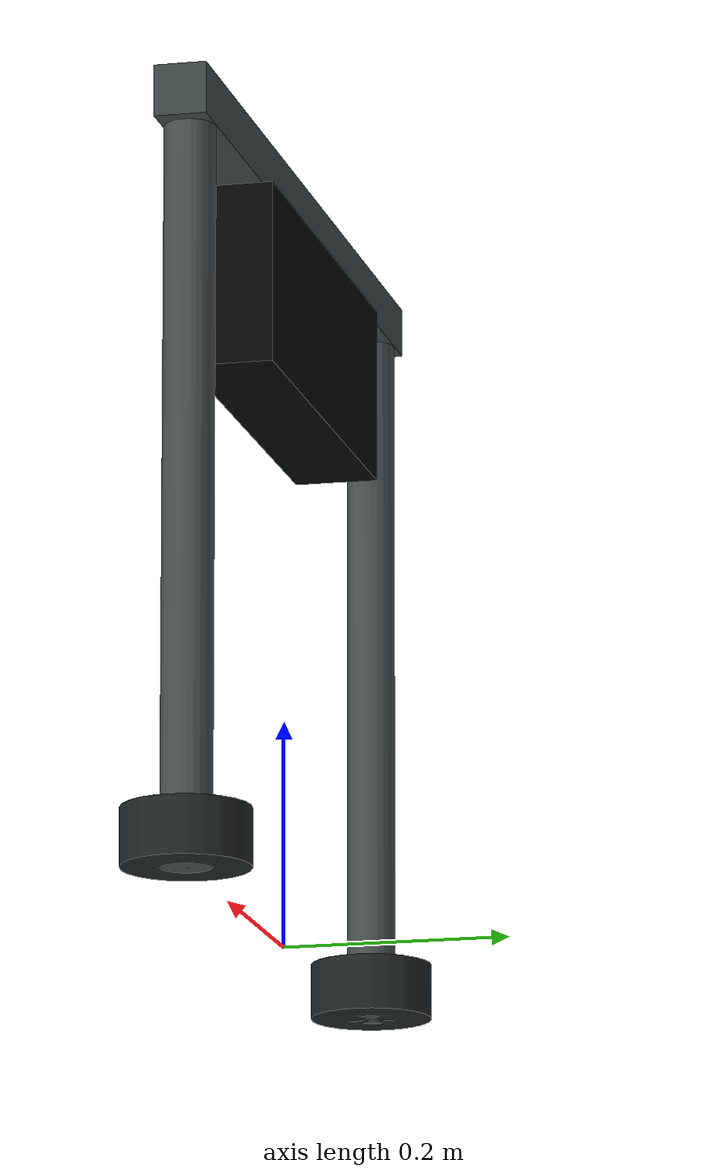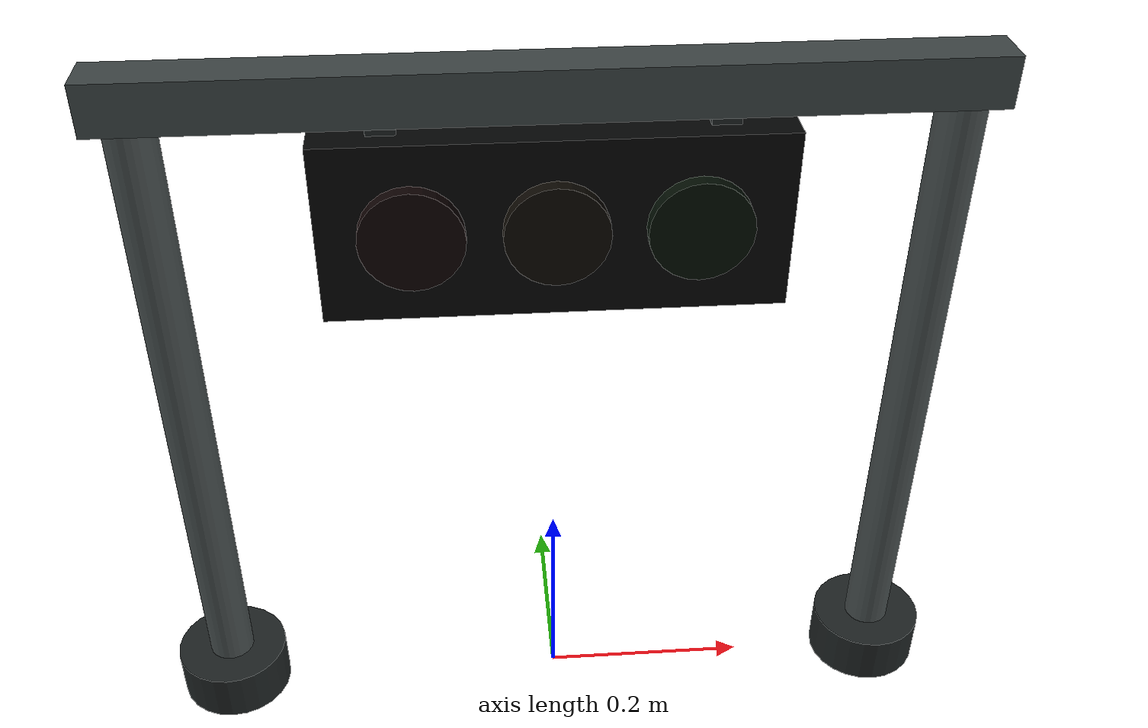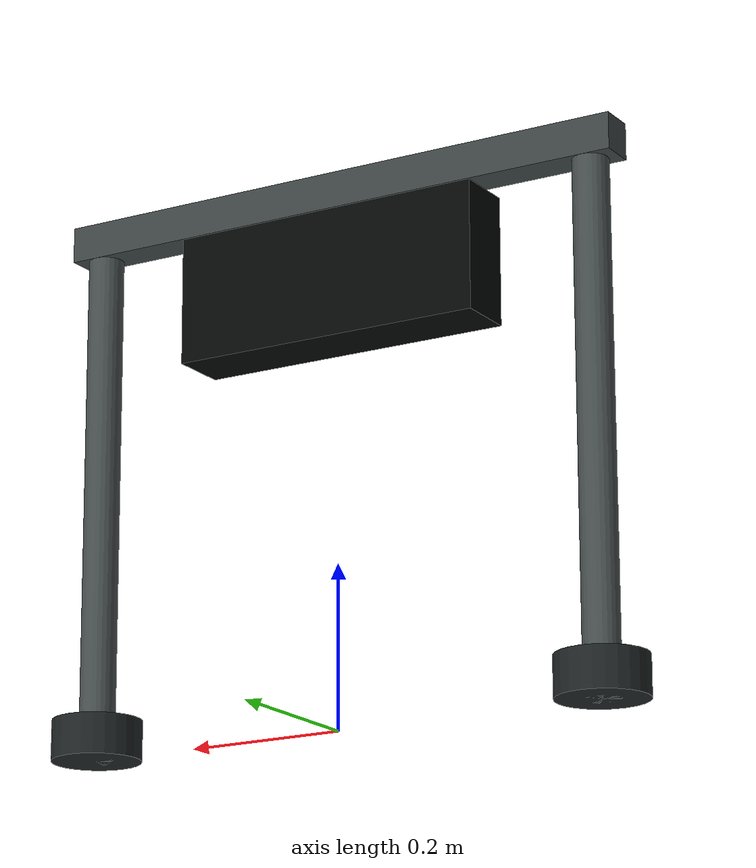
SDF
<?xml version="1.0"?>
<sdf version="1.6">
  <model name="traffic_light">
    <static>true</static>
    <link name="gantry">
      <collision name="left_post_collision">
        <pose>-0.34 0 0.32 0 0 0</pose>
        <geometry><cylinder><radius>0.022</radius><length>0.64</length></cylinder></geometry>
      </collision>
      <collision name="right_post_collision">
        <pose>0.34 0 0.32 0 0 0</pose>
        <geometry><cylinder><radius>0.022</radius><length>0.64</length></cylinder></geometry>
      </collision>
      <collision name="crossbar_collision">
        <pose>0 0 0.66 0 0 0</pose>
        <geometry><box><size>0.75 0.045 0.045</size></box></geometry>
      </collision>
      <collision name="housing_collision">
        <pose>0 0 0.55 0 0 0</pose>
        <geometry><box><size>0.40 0.075 0.16</size></box></geometry>
      </collision>

      <visual name="left_foot">
        <pose>-0.34 0 0.025 0 0 0</pose>
        <geometry><cylinder><radius>0.055</radius><length>0.05</length></cylinder></geometry>
        <material><ambient>0.06 0.07 0.07 1</ambient><diffuse>0.12 0.14 0.14 1</diffuse></material>
      </visual>
      <visual name="right_foot">
        <pose>0.34 0 0.025 0 0 0</pose>
        <geometry><cylinder><radius>0.055</radius><length>0.05</length></cylinder></geometry>
        <material><ambient>0.06 0.07 0.07 1</ambient><diffuse>0.12 0.14 0.14 1</diffuse></material>
      </visual>
      <visual name="left_post">
        <pose>-0.34 0 0.32 0 0 0</pose>
        <geometry><cylinder><radius>0.022</radius><length>0.64</length></cylinder></geometry>
        <material><ambient>0.16 0.18 0.18 1</ambient><diffuse>0.28 0.31 0.31 1</diffuse><specular>0.25 0.25 0.25 1</specular></material>
      </visual>
      <visual name="right_post">
        <pose>0.34 0 0.32 0 0 0</pose>
        <geometry><cylinder><radius>0.022</radius><length>0.64</length></cylinder></geometry>
        <material><ambient>0.16 0.18 0.18 1</ambient><diffuse>0.28 0.31 0.31 1</diffuse><specular>0.25 0.25 0.25 1</specular></material>
      </visual>
      <visual name="crossbar">
        <pose>0 0 0.66 0 0 0</pose>
        <geometry><box><size>0.75 0.045 0.045</size></box></geometry>
        <material><ambient>0.12 0.14 0.14 1</ambient><diffuse>0.24 0.27 0.27 1</diffuse><specular>0.25 0.25 0.25 1</specular></material>
      </visual>
      <visual name="left_hanger">
        <pose>-0.14 0 0.615 0 0 0</pose>
        <geometry><box><size>0.025 0.035 0.07</size></box></geometry>
        <material><ambient>0.06 0.07 0.07 1</ambient><diffuse>0.12 0.14 0.14 1</diffuse></material>
      </visual>
      <visual name="right_hanger">
        <pose>0.14 0 0.615 0 0 0</pose>
        <geometry><box><size>0.025 0.035 0.07</size></box></geometry>
        <material><ambient>0.06 0.07 0.07 1</ambient><diffuse>0.12 0.14 0.14 1</diffuse></material>
      </visual>
      <visual name="housing">
        <pose>0 0 0.55 0 0 0</pose>
        <geometry><box><size>0.40 0.075 0.16</size></box></geometry>
        <material><ambient>0.008 0.010 0.010 1</ambient><diffuse>0.016 0.020 0.020 1</diffuse><specular>0.10 0.10 0.10 1</specular></material>
      </visual>
      <visual name="red_lens_off">
        <pose>-0.12 -0.044 0.55 1.570796 0 0</pose>
        <geometry><cylinder><radius>0.045</radius><length>0.014</length></cylinder></geometry>
        <material><ambient>0.030 0.001 0.001 1</ambient><diffuse>0.045 0.002 0.002 1</diffuse></material>
      </visual>
      <visual name="yellow_lens_off">
        <pose>0 -0.044 0.55 1.570796 0 0</pose>
        <geometry><cylinder><radius>0.045</radius><length>0.014</length></cylinder></geometry>
        <material><ambient>0.025 0.015 0.001 1</ambient><diffuse>0.040 0.024 0.002 1</diffuse></material>
      </visual>
      <visual name="green_lens_off">
        <pose>0.12 -0.044 0.55 1.570796 0 0</pose>
        <geometry><cylinder><radius>0.045</radius><length>0.014</length></cylinder></geometry>
        <material><ambient>0.001 0.030 0.003 1</ambient><diffuse>0.002 0.045 0.004 1</diffuse></material>
      </visual>
    </link>
  </model>
</sdf>
